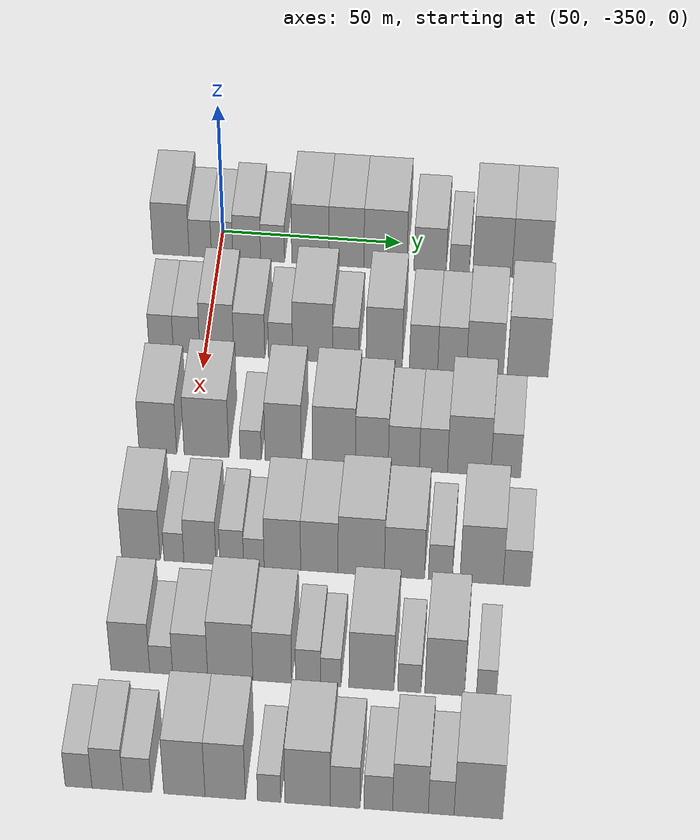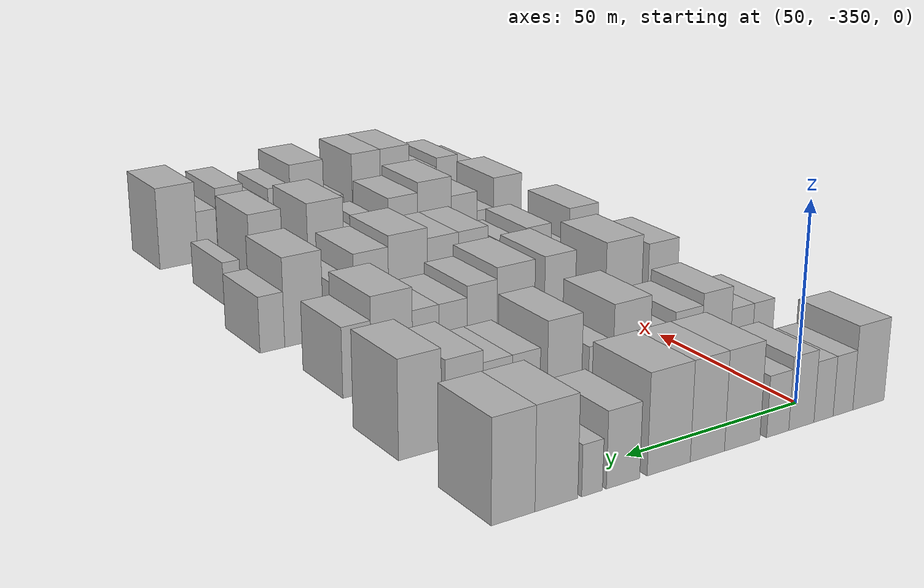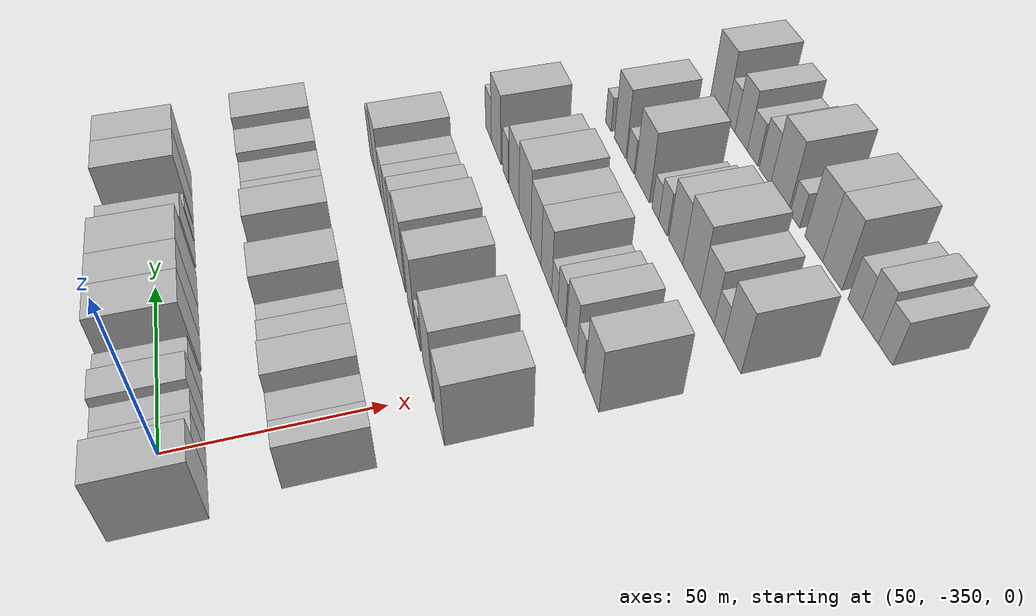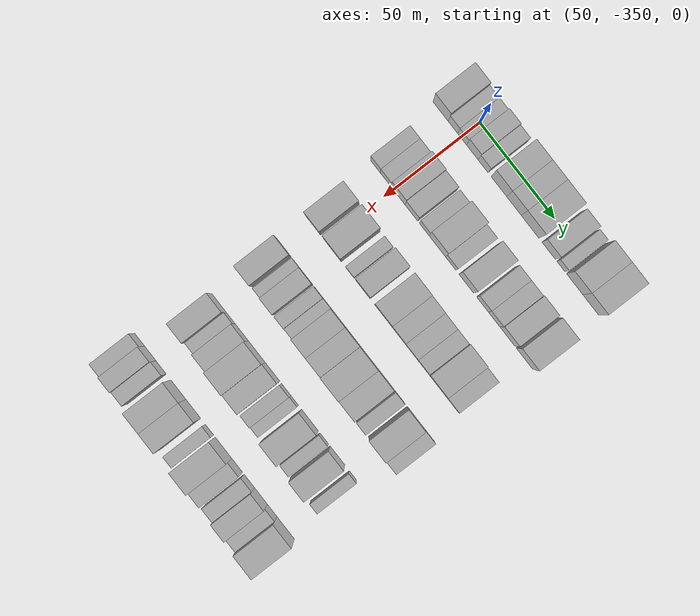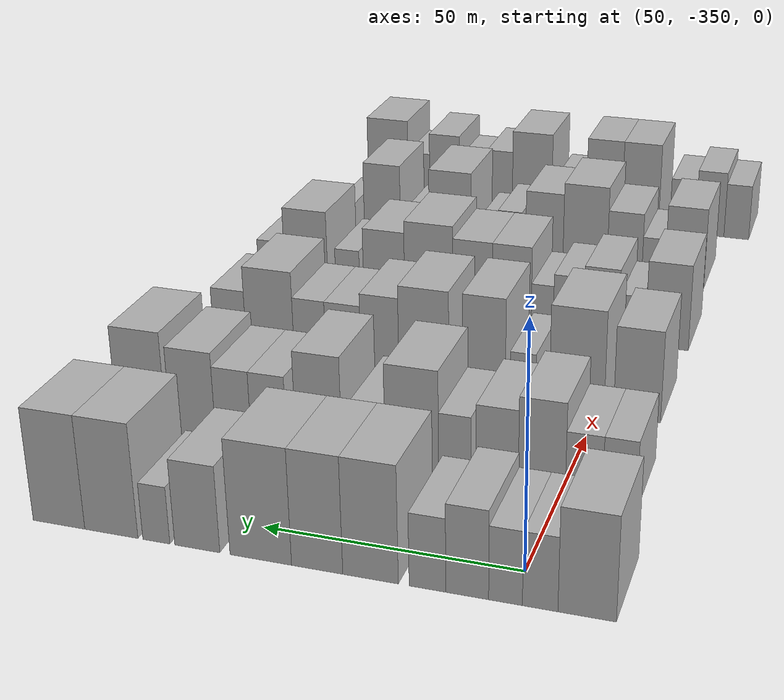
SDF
<sdf version="1.6">
 <world name="default">
  <model name="building_24">
   <static>1</static>
   <pose>50.0000 -363.4309 0 0.000000 0.000000 0.000000</pose>
   <link name="link">
    <pose>0 0 10.50 0 0 0</pose>
    <collision name="collision"><geometry><box><size>20.0000 10.1506 21.0000</size></box></geometry></collision>
    <visual name="visual">
     <cast_shadows>0</cast_shadows>
     <geometry><box><size>20.0000 10.1506 21.0000</size></box></geometry>
     <material>
      <script>
       <uri>model://HANNAS_wall/materials/scripts</uri>
       <uri>model://HANNAS_wall/materials/textures</uri>
       <name>vrc/HANNAS_wall</name>
      </script>
     </material>
    </visual>
   </link>
  </model>
  <model name="building_25">
   <static>1</static>
   <pose>50.0000 -355.2272 0 0.000000 0.000000 0.000000</pose>
   <link name="link">
    <pose>0 0 7.50 0 0 0</pose>
    <collision name="collision"><geometry><box><size>20.0000 6.2568 15.0000</size></box></geometry></collision>
    <visual name="visual">
     <cast_shadows>0</cast_shadows>
     <geometry><box><size>20.0000 6.2568 15.0000</size></box></geometry>
     <material>
      <script>
       <uri>model://HANNAS_wall/materials/scripts</uri>
       <uri>model://HANNAS_wall/materials/textures</uri>
       <name>vrc/HANNAS_wall</name>
      </script>
     </material>
    </visual>
   </link>
  </model>
  <model name="building_26">
   <static>1</static>
   <pose>50.0000 -349.0921 0 0.000000 0.000000 0.000000</pose>
   <link name="link">
    <pose>0 0 7.50 0 0 0</pose>
    <collision name="collision"><geometry><box><size>20.0000 6.0135 15.0000</size></box></geometry></collision>
    <visual name="visual">
     <cast_shadows>0</cast_shadows>
     <geometry><box><size>20.0000 6.0135 15.0000</size></box></geometry>
     <material>
      <script>
       <uri>model://HANNAS_wall/materials/scripts</uri>
       <uri>model://HANNAS_wall/materials/textures</uri>
       <name>vrc/HANNAS_wall</name>
      </script>
     </material>
    </visual>
   </link>
  </model>
  <model name="building_27">
   <static>1</static>
   <pose>50.0000 -342.2209 0 0.000000 0.000000 0.000000</pose>
   <link name="link">
    <pose>0 0 9.00 0 0 0</pose>
    <collision name="collision"><geometry><box><size>20.0000 7.7289 18.0000</size></box></geometry></collision>
    <visual name="visual">
     <cast_shadows>0</cast_shadows>
     <geometry><box><size>20.0000 7.7289 18.0000</size></box></geometry>
     <material>
      <script>
       <uri>model://HANNAS_wall/materials/scripts</uri>
       <uri>model://HANNAS_wall/materials/textures</uri>
       <name>vrc/HANNAS_wall</name>
      </script>
     </material>
    </visual>
   </link>
  </model>
  <model name="building_28">
   <static>1</static>
   <pose>50.0000 -335.0073 0 0.000000 0.000000 0.000000</pose>
   <link name="link">
    <pose>0 0 7.50 0 0 0</pose>
    <collision name="collision"><geometry><box><size>20.0000 6.6983 15.0000</size></box></geometry></collision>
    <visual name="visual">
     <cast_shadows>0</cast_shadows>
     <geometry><box><size>20.0000 6.6983 15.0000</size></box></geometry>
     <material>
      <script>
       <uri>model://HANNAS_wall/materials/scripts</uri>
       <uri>model://HANNAS_wall/materials/textures</uri>
       <name>vrc/HANNAS_wall</name>
      </script>
     </material>
    </visual>
   </link>
  </model>
  <model name="building_29">
   <static>1</static>
   <pose>50.0000 -324.4757 0 0.000000 0.000000 0.000000</pose>
   <link name="link">
    <pose>0 0 12.00 0 0 0</pose>
    <collision name="collision"><geometry><box><size>20.0000 10.3648 24.0000</size></box></geometry></collision>
    <visual name="visual">
     <cast_shadows>0</cast_shadows>
     <geometry><box><size>20.0000 10.3648 24.0000</size></box></geometry>
     <material>
      <script>
       <uri>model://HANNAS_wall/materials/scripts</uri>
       <uri>model://HANNAS_wall/materials/textures</uri>
       <name>vrc/HANNAS_wall</name>
      </script>
     </material>
    </visual>
   </link>
  </model>
  <model name="building_30">
   <static>1</static>
   <pose>50.0000 -314.4216 0 0.000000 0.000000 0.000000</pose>
   <link name="link">
    <pose>0 0 12.00 0 0 0</pose>
    <collision name="collision"><geometry><box><size>20.0000 9.7434 24.0000</size></box></geometry></collision>
    <visual name="visual">
     <cast_shadows>0</cast_shadows>
     <geometry><box><size>20.0000 9.7434 24.0000</size></box></geometry>
     <material>
      <script>
       <uri>model://HANNAS_wall/materials/scripts</uri>
       <uri>model://HANNAS_wall/materials/textures</uri>
       <name>vrc/HANNAS_wall</name>
      </script>
     </material>
    </visual>
   </link>
  </model>
  <model name="building_31">
   <static>1</static>
   <pose>50.0000 -303.5805 0 0.000000 0.000000 0.000000</pose>
   <link name="link">
    <pose>0 0 12.00 0 0 0</pose>
    <collision name="collision"><geometry><box><size>20.0000 11.9389 24.0000</size></box></geometry></collision>
    <visual name="visual">
     <cast_shadows>0</cast_shadows>
     <geometry><box><size>20.0000 11.9389 24.0000</size></box></geometry>
     <material>
      <script>
       <uri>model://HANNAS_wall/materials/scripts</uri>
       <uri>model://HANNAS_wall/materials/textures</uri>
       <name>vrc/HANNAS_wall</name>
      </script>
     </material>
    </visual>
   </link>
  </model>
  <model name="building_32">
   <static>1</static>
   <pose>50.0000 -291.1499 0 0.000000 0.000000 0.000000</pose>
   <link name="link">
    <pose>0 0 9.00 0 0 0</pose>
    <collision name="collision"><geometry><box><size>20.0000 8.9223 18.0000</size></box></geometry></collision>
    <visual name="visual">
     <cast_shadows>0</cast_shadows>
     <geometry><box><size>20.0000 8.9223 18.0000</size></box></geometry>
     <material>
      <script>
       <uri>model://HANNAS_wall/materials/scripts</uri>
       <uri>model://HANNAS_wall/materials/textures</uri>
       <name>vrc/HANNAS_wall</name>
      </script>
     </material>
    </visual>
   </link>
  </model>
  <model name="building_33">
   <static>1</static>
   <pose>50.0000 -282.9721 0 0.000000 0.000000 0.000000</pose>
   <link name="link">
    <pose>0 0 6.00 0 0 0</pose>
    <collision name="collision"><geometry><box><size>20.0000 5.4334 12.0000</size></box></geometry></collision>
    <visual name="visual">
     <cast_shadows>0</cast_shadows>
     <geometry><box><size>20.0000 5.4334 12.0000</size></box></geometry>
     <material>
      <script>
       <uri>model://HANNAS_wall/materials/scripts</uri>
       <uri>model://HANNAS_wall/materials/textures</uri>
       <name>vrc/HANNAS_wall</name>
      </script>
     </material>
    </visual>
   </link>
  </model>
  <model name="building_34">
   <static>1</static>
   <pose>50.0000 -273.8213 0 0.000000 0.000000 0.000000</pose>
   <link name="link">
    <pose>0 0 12.00 0 0 0</pose>
    <collision name="collision"><geometry><box><size>20.0000 10.8682 24.0000</size></box></geometry></collision>
    <visual name="visual">
     <cast_shadows>0</cast_shadows>
     <geometry><box><size>20.0000 10.8682 24.0000</size></box></geometry>
     <material>
      <script>
       <uri>model://HANNAS_wall/materials/scripts</uri>
       <uri>model://HANNAS_wall/materials/textures</uri>
       <name>vrc/HANNAS_wall</name>
      </script>
     </material>
    </visual>
   </link>
  </model>
  <model name="building_35">
   <static>1</static>
   <pose>50.0000 -263.0120 0 0.000000 0.000000 0.000000</pose>
   <link name="link">
    <pose>0 0 12.00 0 0 0</pose>
    <collision name="collision"><geometry><box><size>20.0000 10.7503 24.0000</size></box></geometry></collision>
    <visual name="visual">
     <cast_shadows>0</cast_shadows>
     <geometry><box><size>20.0000 10.7503 24.0000</size></box></geometry>
     <material>
      <script>
       <uri>model://HANNAS_wall/materials/scripts</uri>
       <uri>model://HANNAS_wall/materials/textures</uri>
       <name>vrc/HANNAS_wall</name>
      </script>
     </material>
    </visual>
   </link>
  </model>
  <model name="building_153">
   <static>1</static>
   <pose>85.0000 -361.9511 0 0.000000 0.000000 0.000000</pose>
   <link name="link">
    <pose>0 0 7.50 0 0 0</pose>
    <collision name="collision"><geometry><box><size>20.0000 6.6317 15.0000</size></box></geometry></collision>
    <visual name="visual">
     <cast_shadows>0</cast_shadows>
     <geometry><box><size>20.0000 6.6317 15.0000</size></box></geometry>
     <material>
      <script>
       <uri>model://HANNAS_wall/materials/scripts</uri>
       <uri>model://HANNAS_wall/materials/textures</uri>
       <name>vrc/HANNAS_wall</name>
      </script>
     </material>
    </visual>
   </link>
  </model>
  <model name="building_154">
   <static>1</static>
   <pose>85.0000 -355.0183 0 0.000000 0.000000 0.000000</pose>
   <link name="link">
    <pose>0 0 7.50 0 0 0</pose>
    <collision name="collision"><geometry><box><size>20.0000 7.2338 15.0000</size></box></geometry></collision>
    <visual name="visual">
     <cast_shadows>0</cast_shadows>
     <geometry><box><size>20.0000 7.2338 15.0000</size></box></geometry>
     <material>
      <script>
       <uri>model://HANNAS_wall/materials/scripts</uri>
       <uri>model://HANNAS_wall/materials/textures</uri>
       <name>vrc/HANNAS_wall</name>
      </script>
     </material>
    </visual>
   </link>
  </model>
  <model name="building_155">
   <static>1</static>
   <pose>85.0000 -346.7651 0 0.000000 0.000000 0.000000</pose>
   <link name="link">
    <pose>0 0 10.50 0 0 0</pose>
    <collision name="collision"><geometry><box><size>20.0000 9.2728 21.0000</size></box></geometry></collision>
    <visual name="visual">
     <cast_shadows>0</cast_shadows>
     <geometry><box><size>20.0000 9.2728 21.0000</size></box></geometry>
     <material>
      <script>
       <uri>model://HANNAS_wall/materials/scripts</uri>
       <uri>model://HANNAS_wall/materials/textures</uri>
       <name>vrc/HANNAS_wall</name>
      </script>
     </material>
    </visual>
   </link>
  </model>
  <model name="building_156">
   <static>1</static>
   <pose>85.0000 -337.8982 0 0.000000 0.000000 0.000000</pose>
   <link name="link">
    <pose>0 0 9.00 0 0 0</pose>
    <collision name="collision"><geometry><box><size>20.0000 8.4610 18.0000</size></box></geometry></collision>
    <visual name="visual">
     <cast_shadows>0</cast_shadows>
     <geometry><box><size>20.0000 8.4610 18.0000</size></box></geometry>
     <material>
      <script>
       <uri>model://HANNAS_wall/materials/scripts</uri>
       <uri>model://HANNAS_wall/materials/textures</uri>
       <name>vrc/HANNAS_wall</name>
      </script>
     </material>
    </visual>
   </link>
  </model>
  <model name="building_157">
   <static>1</static>
   <pose>85.0000 -329.3934 0 0.000000 0.000000 0.000000</pose>
   <link name="link">
    <pose>0 0 7.50 0 0 0</pose>
    <collision name="collision"><geometry><box><size>20.0000 6.5484 15.0000</size></box></geometry></collision>
    <visual name="visual">
     <cast_shadows>0</cast_shadows>
     <geometry><box><size>20.0000 6.5484 15.0000</size></box></geometry>
     <material>
      <script>
       <uri>model://HANNAS_wall/materials/scripts</uri>
       <uri>model://HANNAS_wall/materials/textures</uri>
       <name>vrc/HANNAS_wall</name>
      </script>
     </material>
    </visual>
   </link>
  </model>
  <model name="building_158">
   <static>1</static>
   <pose>85.0000 -320.6486 0 0.000000 0.000000 0.000000</pose>
   <link name="link">
    <pose>0 0 12.00 0 0 0</pose>
    <collision name="collision"><geometry><box><size>20.0000 10.9413 24.0000</size></box></geometry></collision>
    <visual name="visual">
     <cast_shadows>0</cast_shadows>
     <geometry><box><size>20.0000 10.9413 24.0000</size></box></geometry>
     <material>
      <script>
       <uri>model://HANNAS_wall/materials/scripts</uri>
       <uri>model://HANNAS_wall/materials/textures</uri>
       <name>vrc/HANNAS_wall</name>
      </script>
     </material>
    </visual>
   </link>
  </model>
  <model name="building_159">
   <static>1</static>
   <pose>85.0000 -311.6511 0 0.000000 0.000000 0.000000</pose>
   <link name="link">
    <pose>0 0 7.50 0 0 0</pose>
    <collision name="collision"><geometry><box><size>20.0000 7.0537 15.0000</size></box></geometry></collision>
    <visual name="visual">
     <cast_shadows>0</cast_shadows>
     <geometry><box><size>20.0000 7.0537 15.0000</size></box></geometry>
     <material>
      <script>
       <uri>model://HANNAS_wall/materials/scripts</uri>
       <uri>model://HANNAS_wall/materials/textures</uri>
       <name>vrc/HANNAS_wall</name>
      </script>
     </material>
    </visual>
   </link>
  </model>
  <model name="building_160">
   <static>1</static>
   <pose>85.0000 -301.2420 0 0.000000 0.000000 0.000000</pose>
   <link name="link">
    <pose>0 0 12.00 0 0 0</pose>
    <collision name="collision"><geometry><box><size>20.0000 9.7644 24.0000</size></box></geometry></collision>
    <visual name="visual">
     <cast_shadows>0</cast_shadows>
     <geometry><box><size>20.0000 9.7644 24.0000</size></box></geometry>
     <material>
      <script>
       <uri>model://HANNAS_wall/materials/scripts</uri>
       <uri>model://HANNAS_wall/materials/textures</uri>
       <name>vrc/HANNAS_wall</name>
      </script>
     </material>
    </visual>
   </link>
  </model>
  <model name="building_161">
   <static>1</static>
   <pose>85.0000 -290.5201 0 0.000000 0.000000 0.000000</pose>
   <link name="link">
    <pose>0 0 9.00 0 0 0</pose>
    <collision name="collision"><geometry><box><size>20.0000 7.6795 18.0000</size></box></geometry></collision>
    <visual name="visual">
     <cast_shadows>0</cast_shadows>
     <geometry><box><size>20.0000 7.6795 18.0000</size></box></geometry>
     <material>
      <script>
       <uri>model://HANNAS_wall/materials/scripts</uri>
       <uri>model://HANNAS_wall/materials/textures</uri>
       <name>vrc/HANNAS_wall</name>
      </script>
     </material>
    </visual>
   </link>
  </model>
  <model name="building_162">
   <static>1</static>
   <pose>85.0000 -282.7729 0 0.000000 0.000000 0.000000</pose>
   <link name="link">
    <pose>0 0 9.00 0 0 0</pose>
    <collision name="collision"><geometry><box><size>20.0000 7.8149 18.0000</size></box></geometry></collision>
    <visual name="visual">
     <cast_shadows>0</cast_shadows>
     <geometry><box><size>20.0000 7.8149 18.0000</size></box></geometry>
     <material>
      <script>
       <uri>model://HANNAS_wall/materials/scripts</uri>
       <uri>model://HANNAS_wall/materials/textures</uri>
       <name>vrc/HANNAS_wall</name>
      </script>
     </material>
    </visual>
   </link>
  </model>
  <model name="building_163">
   <static>1</static>
   <pose>85.0000 -273.8804 0 0.000000 0.000000 0.000000</pose>
   <link name="link">
    <pose>0 0 10.50 0 0 0</pose>
    <collision name="collision"><geometry><box><size>20.0000 9.9701 21.0000</size></box></geometry></collision>
    <visual name="visual">
     <cast_shadows>0</cast_shadows>
     <geometry><box><size>20.0000 9.9701 21.0000</size></box></geometry>
     <material>
      <script>
       <uri>model://HANNAS_wall/materials/scripts</uri>
       <uri>model://HANNAS_wall/materials/textures</uri>
       <name>vrc/HANNAS_wall</name>
      </script>
     </material>
    </visual>
   </link>
  </model>
  <model name="building_164">
   <static>1</static>
   <pose>85.0000 -262.3771 0 0.000000 0.000000 0.000000</pose>
   <link name="link">
    <pose>0 0 12.00 0 0 0</pose>
    <collision name="collision"><geometry><box><size>20.0000 11.0364 24.0000</size></box></geometry></collision>
    <visual name="visual">
     <cast_shadows>0</cast_shadows>
     <geometry><box><size>20.0000 11.0364 24.0000</size></box></geometry>
     <material>
      <script>
       <uri>model://HANNAS_wall/materials/scripts</uri>
       <uri>model://HANNAS_wall/materials/textures</uri>
       <name>vrc/HANNAS_wall</name>
      </script>
     </material>
    </visual>
   </link>
  </model>
  <model name="building_281">
   <static>1</static>
   <pose>120.0000 -358.6062 0 0.000000 0.000000 0.000000</pose>
   <link name="link">
    <pose>0 0 10.50 0 0 0</pose>
    <collision name="collision"><geometry><box><size>20.0000 9.9936 21.0000</size></box></geometry></collision>
    <visual name="visual">
     <cast_shadows>0</cast_shadows>
     <geometry><box><size>20.0000 9.9936 21.0000</size></box></geometry>
     <material>
      <script>
       <uri>model://HANNAS_wall/materials/scripts</uri>
       <uri>model://HANNAS_wall/materials/textures</uri>
       <name>vrc/HANNAS_wall</name>
      </script>
     </material>
    </visual>
   </link>
  </model>
  <model name="building_282">
   <static>1</static>
   <pose>120.0000 -345.6694 0 0.000000 0.000000 0.000000</pose>
   <link name="link">
    <pose>0 0 12.00 0 0 0</pose>
    <collision name="collision"><geometry><box><size>20.0000 11.8802 24.0000</size></box></geometry></collision>
    <visual name="visual">
     <cast_shadows>0</cast_shadows>
     <geometry><box><size>20.0000 11.8802 24.0000</size></box></geometry>
     <material>
      <script>
       <uri>model://HANNAS_wall/materials/scripts</uri>
       <uri>model://HANNAS_wall/materials/textures</uri>
       <name>vrc/HANNAS_wall</name>
      </script>
     </material>
    </visual>
   </link>
  </model>
  <model name="building_283">
   <static>1</static>
   <pose>120.0000 -333.9067 0 0.000000 0.000000 0.000000</pose>
   <link name="link">
    <pose>0 0 6.00 0 0 0</pose>
    <collision name="collision"><geometry><box><size>20.0000 5.6452 12.0000</size></box></geometry></collision>
    <visual name="visual">
     <cast_shadows>0</cast_shadows>
     <geometry><box><size>20.0000 5.6452 12.0000</size></box></geometry>
     <material>
      <script>
       <uri>model://HANNAS_wall/materials/scripts</uri>
       <uri>model://HANNAS_wall/materials/textures</uri>
       <name>vrc/HANNAS_wall</name>
      </script>
     </material>
    </visual>
   </link>
  </model>
  <model name="building_284">
   <static>1</static>
   <pose>120.0000 -325.2833 0 0.000000 0.000000 0.000000</pose>
   <link name="link">
    <pose>0 0 12.00 0 0 0</pose>
    <collision name="collision"><geometry><box><size>20.0000 9.6015 24.0000</size></box></geometry></collision>
    <visual name="visual">
     <cast_shadows>0</cast_shadows>
     <geometry><box><size>20.0000 9.6015 24.0000</size></box></geometry>
     <material>
      <script>
       <uri>model://HANNAS_wall/materials/scripts</uri>
       <uri>model://HANNAS_wall/materials/textures</uri>
       <name>vrc/HANNAS_wall</name>
      </script>
     </material>
    </visual>
   </link>
  </model>
  <model name="building_285">
   <static>1</static>
   <pose>120.0000 -311.8254 0 0.000000 0.000000 0.000000</pose>
   <link name="link">
    <pose>0 0 12.00 0 0 0</pose>
    <collision name="collision"><geometry><box><size>20.0000 11.3143 24.0000</size></box></geometry></collision>
    <visual name="visual">
     <cast_shadows>0</cast_shadows>
     <geometry><box><size>20.0000 11.3143 24.0000</size></box></geometry>
     <material>
      <script>
       <uri>model://HANNAS_wall/materials/scripts</uri>
       <uri>model://HANNAS_wall/materials/textures</uri>
       <name>vrc/HANNAS_wall</name>
      </script>
     </material>
    </visual>
   </link>
  </model>
  <model name="building_286">
   <static>1</static>
   <pose>120.0000 -301.8085 0 0.000000 0.000000 0.000000</pose>
   <link name="link">
    <pose>0 0 10.50 0 0 0</pose>
    <collision name="collision"><geometry><box><size>20.0000 8.7195 21.0000</size></box></geometry></collision>
    <visual name="visual">
     <cast_shadows>0</cast_shadows>
     <geometry><box><size>20.0000 8.7195 21.0000</size></box></geometry>
     <material>
      <script>
       <uri>model://HANNAS_wall/materials/scripts</uri>
       <uri>model://HANNAS_wall/materials/textures</uri>
       <name>vrc/HANNAS_wall</name>
      </script>
     </material>
    </visual>
   </link>
  </model>
  <model name="building_287">
   <static>1</static>
   <pose>120.0000 -293.3529 0 0.000000 0.000000 0.000000</pose>
   <link name="link">
    <pose>0 0 9.00 0 0 0</pose>
    <collision name="collision"><geometry><box><size>20.0000 8.1916 18.0000</size></box></geometry></collision>
    <visual name="visual">
     <cast_shadows>0</cast_shadows>
     <geometry><box><size>20.0000 8.1916 18.0000</size></box></geometry>
     <material>
      <script>
       <uri>model://HANNAS_wall/materials/scripts</uri>
       <uri>model://HANNAS_wall/materials/textures</uri>
       <name>vrc/HANNAS_wall</name>
      </script>
     </material>
    </visual>
   </link>
  </model>
  <model name="building_288">
   <static>1</static>
   <pose>120.0000 -285.5261 0 0.000000 0.000000 0.000000</pose>
   <link name="link">
    <pose>0 0 9.00 0 0 0</pose>
    <collision name="collision"><geometry><box><size>20.0000 7.4621 18.0000</size></box></geometry></collision>
    <visual name="visual">
     <cast_shadows>0</cast_shadows>
     <geometry><box><size>20.0000 7.4621 18.0000</size></box></geometry>
     <material>
      <script>
       <uri>model://HANNAS_wall/materials/scripts</uri>
       <uri>model://HANNAS_wall/materials/textures</uri>
       <name>vrc/HANNAS_wall</name>
      </script>
     </material>
    </visual>
   </link>
  </model>
  <model name="building_289">
   <static>1</static>
   <pose>120.0000 -276.0928 0 0.000000 0.000000 0.000000</pose>
   <link name="link">
    <pose>0 0 12.00 0 0 0</pose>
    <collision name="collision"><geometry><box><size>20.0000 11.4045 24.0000</size></box></geometry></collision>
    <visual name="visual">
     <cast_shadows>0</cast_shadows>
     <geometry><box><size>20.0000 11.4045 24.0000</size></box></geometry>
     <material>
      <script>
       <uri>model://HANNAS_wall/materials/scripts</uri>
       <uri>model://HANNAS_wall/materials/textures</uri>
       <name>vrc/HANNAS_wall</name>
      </script>
     </material>
    </visual>
   </link>
  </model>
  <model name="building_290">
   <static>1</static>
   <pose>120.0000 -266.4573 0 0.000000 0.000000 0.000000</pose>
   <link name="link">
    <pose>0 0 9.00 0 0 0</pose>
    <collision name="collision"><geometry><box><size>20.0000 7.8664 18.0000</size></box></geometry></collision>
    <visual name="visual">
     <cast_shadows>0</cast_shadows>
     <geometry><box><size>20.0000 7.8664 18.0000</size></box></geometry>
     <material>
      <script>
       <uri>model://HANNAS_wall/materials/scripts</uri>
       <uri>model://HANNAS_wall/materials/textures</uri>
       <name>vrc/HANNAS_wall</name>
      </script>
     </material>
    </visual>
   </link>
  </model>
  <model name="building_405">
   <static>1</static>
   <pose>155.0000 -358.7705 0 0.000000 0.000000 0.000000</pose>
   <link name="link">
    <pose>0 0 10.50 0 0 0</pose>
    <collision name="collision"><geometry><box><size>20.0000 9.9899 21.0000</size></box></geometry></collision>
    <visual name="visual">
     <cast_shadows>0</cast_shadows>
     <geometry><box><size>20.0000 9.9899 21.0000</size></box></geometry>
     <material>
      <script>
       <uri>model://HANNAS_wall/materials/scripts</uri>
       <uri>model://HANNAS_wall/materials/textures</uri>
       <name>vrc/HANNAS_wall</name>
      </script>
     </material>
    </visual>
   </link>
  </model>
  <model name="building_406">
   <static>1</static>
   <pose>155.0000 -350.1902 0 0.000000 0.000000 0.000000</pose>
   <link name="link">
    <pose>0 0 6.00 0 0 0</pose>
    <collision name="collision"><geometry><box><size>20.0000 5.1708 12.0000</size></box></geometry></collision>
    <visual name="visual">
     <cast_shadows>0</cast_shadows>
     <geometry><box><size>20.0000 5.1708 12.0000</size></box></geometry>
     <material>
      <script>
       <uri>model://HANNAS_wall/materials/scripts</uri>
       <uri>model://HANNAS_wall/materials/textures</uri>
       <name>vrc/HANNAS_wall</name>
      </script>
     </material>
    </visual>
   </link>
  </model>
  <model name="building_407">
   <static>1</static>
   <pose>155.0000 -343.4422 0 0.000000 0.000000 0.000000</pose>
   <link name="link">
    <pose>0 0 9.00 0 0 0</pose>
    <collision name="collision"><geometry><box><size>20.0000 8.3251 18.0000</size></box></geometry></collision>
    <visual name="visual">
     <cast_shadows>0</cast_shadows>
     <geometry><box><size>20.0000 8.3251 18.0000</size></box></geometry>
     <material>
      <script>
       <uri>model://HANNAS_wall/materials/scripts</uri>
       <uri>model://HANNAS_wall/materials/textures</uri>
       <name>vrc/HANNAS_wall</name>
      </script>
     </material>
    </visual>
   </link>
  </model>
  <model name="building_408">
   <static>1</static>
   <pose>155.0000 -335.2054 0 0.000000 0.000000 0.000000</pose>
   <link name="link">
    <pose>0 0 7.50 0 0 0</pose>
    <collision name="collision"><geometry><box><size>20.0000 6.1485 15.0000</size></box></geometry></collision>
    <visual name="visual">
     <cast_shadows>0</cast_shadows>
     <geometry><box><size>20.0000 6.1485 15.0000</size></box></geometry>
     <material>
      <script>
       <uri>model://HANNAS_wall/materials/scripts</uri>
       <uri>model://HANNAS_wall/materials/textures</uri>
       <name>vrc/HANNAS_wall</name>
      </script>
     </material>
    </visual>
   </link>
  </model>
  <model name="building_409">
   <static>1</static>
   <pose>155.0000 -329.4808 0 0.000000 0.000000 0.000000</pose>
   <link name="link">
    <pose>0 0 6.00 0 0 0</pose>
    <collision name="collision"><geometry><box><size>20.0000 5.3008 12.0000</size></box></geometry></collision>
    <visual name="visual">
     <cast_shadows>0</cast_shadows>
     <geometry><box><size>20.0000 5.3008 12.0000</size></box></geometry>
     <material>
      <script>
       <uri>model://HANNAS_wall/materials/scripts</uri>
       <uri>model://HANNAS_wall/materials/textures</uri>
       <name>vrc/HANNAS_wall</name>
      </script>
     </material>
    </visual>
   </link>
  </model>
  <model name="building_410">
   <static>1</static>
   <pose>155.0000 -322.1096 0 0.000000 0.000000 0.000000</pose>
   <link name="link">
    <pose>0 0 10.50 0 0 0</pose>
    <collision name="collision"><geometry><box><size>20.0000 9.4415 21.0000</size></box></geometry></collision>
    <visual name="visual">
     <cast_shadows>0</cast_shadows>
     <geometry><box><size>20.0000 9.4415 21.0000</size></box></geometry>
     <material>
      <script>
       <uri>model://HANNAS_wall/materials/scripts</uri>
       <uri>model://HANNAS_wall/materials/textures</uri>
       <name>vrc/HANNAS_wall</name>
      </script>
     </material>
    </visual>
   </link>
  </model>
  <model name="building_411">
   <static>1</static>
   <pose>155.0000 -312.5730 0 0.000000 0.000000 0.000000</pose>
   <link name="link">
    <pose>0 0 10.50 0 0 0</pose>
    <collision name="collision"><geometry><box><size>20.0000 9.6317 21.0000</size></box></geometry></collision>
    <visual name="visual">
     <cast_shadows>0</cast_shadows>
     <geometry><box><size>20.0000 9.6317 21.0000</size></box></geometry>
     <material>
      <script>
       <uri>model://HANNAS_wall/materials/scripts</uri>
       <uri>model://HANNAS_wall/materials/textures</uri>
       <name>vrc/HANNAS_wall</name>
      </script>
     </material>
    </visual>
   </link>
  </model>
  <model name="building_412">
   <static>1</static>
   <pose>155.0000 -301.7842 0 0.000000 0.000000 0.000000</pose>
   <link name="link">
    <pose>0 0 12.00 0 0 0</pose>
    <collision name="collision"><geometry><box><size>20.0000 11.9459 24.0000</size></box></geometry></collision>
    <visual name="visual">
     <cast_shadows>0</cast_shadows>
     <geometry><box><size>20.0000 11.9459 24.0000</size></box></geometry>
     <material>
      <script>
       <uri>model://HANNAS_wall/materials/scripts</uri>
       <uri>model://HANNAS_wall/materials/textures</uri>
       <name>vrc/HANNAS_wall</name>
      </script>
     </material>
    </visual>
   </link>
  </model>
  <model name="building_413">
   <static>1</static>
   <pose>155.0000 -290.6446 0 0.000000 0.000000 0.000000</pose>
   <link name="link">
    <pose>0 0 10.50 0 0 0</pose>
    <collision name="collision"><geometry><box><size>20.0000 10.3333 21.0000</size></box></geometry></collision>
    <visual name="visual">
     <cast_shadows>0</cast_shadows>
     <geometry><box><size>20.0000 10.3333 21.0000</size></box></geometry>
     <material>
      <script>
       <uri>model://HANNAS_wall/materials/scripts</uri>
       <uri>model://HANNAS_wall/materials/textures</uri>
       <name>vrc/HANNAS_wall</name>
      </script>
     </material>
    </visual>
   </link>
  </model>
  <model name="building_414">
   <static>1</static>
   <pose>155.0000 -281.4172 0 0.000000 0.000000 0.000000</pose>
   <link name="link">
    <pose>0 0 7.50 0 0 0</pose>
    <collision name="collision"><geometry><box><size>20.0000 6.1214 15.0000</size></box></geometry></collision>
    <visual name="visual">
     <cast_shadows>0</cast_shadows>
     <geometry><box><size>20.0000 6.1214 15.0000</size></box></geometry>
     <material>
      <script>
       <uri>model://HANNAS_wall/materials/scripts</uri>
       <uri>model://HANNAS_wall/materials/textures</uri>
       <name>vrc/HANNAS_wall</name>
      </script>
     </material>
    </visual>
   </link>
  </model>
  <model name="building_415">
   <static>1</static>
   <pose>155.0000 -270.8147 0 0.000000 0.000000 0.000000</pose>
   <link name="link">
    <pose>0 0 12.00 0 0 0</pose>
    <collision name="collision"><geometry><box><size>20.0000 11.0836 24.0000</size></box></geometry></collision>
    <visual name="visual">
     <cast_shadows>0</cast_shadows>
     <geometry><box><size>20.0000 11.0836 24.0000</size></box></geometry>
     <material>
      <script>
       <uri>model://HANNAS_wall/materials/scripts</uri>
       <uri>model://HANNAS_wall/materials/textures</uri>
       <name>vrc/HANNAS_wall</name>
      </script>
     </material>
    </visual>
   </link>
  </model>
  <model name="building_416">
   <static>1</static>
   <pose>155.0000 -261.8004 0 0.000000 0.000000 0.000000</pose>
   <link name="link">
    <pose>0 0 7.50 0 0 0</pose>
    <collision name="collision"><geometry><box><size>20.0000 6.9449 15.0000</size></box></geometry></collision>
    <visual name="visual">
     <cast_shadows>0</cast_shadows>
     <geometry><box><size>20.0000 6.9449 15.0000</size></box></geometry>
     <material>
      <script>
       <uri>model://HANNAS_wall/materials/scripts</uri>
       <uri>model://HANNAS_wall/materials/textures</uri>
       <name>vrc/HANNAS_wall</name>
      </script>
     </material>
    </visual>
   </link>
  </model>
  <model name="building_534">
   <static>1</static>
   <pose>190.0000 -357.0696 0 0.000000 0.000000 0.000000</pose>
   <link name="link">
    <pose>0 0 10.50 0 0 0</pose>
    <collision name="collision"><geometry><box><size>20.0000 9.8251 21.0000</size></box></geometry></collision>
    <visual name="visual">
     <cast_shadows>0</cast_shadows>
     <geometry><box><size>20.0000 9.8251 21.0000</size></box></geometry>
     <material>
      <script>
       <uri>model://HANNAS_wall/materials/scripts</uri>
       <uri>model://HANNAS_wall/materials/textures</uri>
       <name>vrc/HANNAS_wall</name>
      </script>
     </material>
    </visual>
   </link>
  </model>
  <model name="building_535">
   <static>1</static>
   <pose>190.0000 -349.2729 0 0.000000 0.000000 0.000000</pose>
   <link name="link">
    <pose>0 0 6.00 0 0 0</pose>
    <collision name="collision"><geometry><box><size>20.0000 5.7681 12.0000</size></box></geometry></collision>
    <visual name="visual">
     <cast_shadows>0</cast_shadows>
     <geometry><box><size>20.0000 5.7681 12.0000</size></box></geometry>
     <material>
      <script>
       <uri>model://HANNAS_wall/materials/scripts</uri>
       <uri>model://HANNAS_wall/materials/textures</uri>
       <name>vrc/HANNAS_wall</name>
      </script>
     </material>
    </visual>
   </link>
  </model>
  <model name="building_536">
   <static>1</static>
   <pose>190.0000 -341.9556 0 0.000000 0.000000 0.000000</pose>
   <link name="link">
    <pose>0 0 9.00 0 0 0</pose>
    <collision name="collision"><geometry><box><size>20.0000 8.8666 18.0000</size></box></geometry></collision>
    <visual name="visual">
     <cast_shadows>0</cast_shadows>
     <geometry><box><size>20.0000 8.8666 18.0000</size></box></geometry>
     <material>
      <script>
       <uri>model://HANNAS_wall/materials/scripts</uri>
       <uri>model://HANNAS_wall/materials/textures</uri>
       <name>vrc/HANNAS_wall</name>
      </script>
     </material>
    </visual>
   </link>
  </model>
  <model name="building_537">
   <static>1</static>
   <pose>190.0000 -331.8355 0 0.000000 0.000000 0.000000</pose>
   <link name="link">
    <pose>0 0 12.00 0 0 0</pose>
    <collision name="collision"><geometry><box><size>20.0000 11.3735 24.0000</size></box></geometry></collision>
    <visual name="visual">
     <cast_shadows>0</cast_shadows>
     <geometry><box><size>20.0000 11.3735 24.0000</size></box></geometry>
     <material>
      <script>
       <uri>model://HANNAS_wall/materials/scripts</uri>
       <uri>model://HANNAS_wall/materials/textures</uri>
       <name>vrc/HANNAS_wall</name>
      </script>
     </material>
    </visual>
   </link>
  </model>
  <model name="building_538">
   <static>1</static>
   <pose>190.0000 -321.2814 0 0.000000 0.000000 0.000000</pose>
   <link name="link">
    <pose>0 0 10.50 0 0 0</pose>
    <collision name="collision"><geometry><box><size>20.0000 9.7347 21.0000</size></box></geometry></collision>
    <visual name="visual">
     <cast_shadows>0</cast_shadows>
     <geometry><box><size>20.0000 9.7347 21.0000</size></box></geometry>
     <material>
      <script>
       <uri>model://HANNAS_wall/materials/scripts</uri>
       <uri>model://HANNAS_wall/materials/textures</uri>
       <name>vrc/HANNAS_wall</name>
      </script>
     </material>
    </visual>
   </link>
  </model>
  <model name="building_539">
   <static>1</static>
   <pose>190.0000 -312.2719 0 0.000000 0.000000 0.000000</pose>
   <link name="link">
    <pose>0 0 7.50 0 0 0</pose>
    <collision name="collision"><geometry><box><size>20.0000 6.2843 15.0000</size></box></geometry></collision>
    <visual name="visual">
     <cast_shadows>0</cast_shadows>
     <geometry><box><size>20.0000 6.2843 15.0000</size></box></geometry>
     <material>
      <script>
       <uri>model://HANNAS_wall/materials/scripts</uri>
       <uri>model://HANNAS_wall/materials/textures</uri>
       <name>vrc/HANNAS_wall</name>
      </script>
     </material>
    </visual>
   </link>
  </model>
  <model name="building_540">
   <static>1</static>
   <pose>190.0000 -306.5652 0 0.000000 0.000000 0.000000</pose>
   <link name="link">
    <pose>0 0 6.00 0 0 0</pose>
    <collision name="collision"><geometry><box><size>20.0000 5.1291 12.0000</size></box></geometry></collision>
    <visual name="visual">
     <cast_shadows>0</cast_shadows>
     <geometry><box><size>20.0000 5.1291 12.0000</size></box></geometry>
     <material>
      <script>
       <uri>model://HANNAS_wall/materials/scripts</uri>
       <uri>model://HANNAS_wall/materials/textures</uri>
       <name>vrc/HANNAS_wall</name>
      </script>
     </material>
    </visual>
   </link>
  </model>
  <model name="building_541">
   <static>1</static>
   <pose>190.0000 -296.3800 0 0.000000 0.000000 0.000000</pose>
   <link name="link">
    <pose>0 0 12.00 0 0 0</pose>
    <collision name="collision"><geometry><box><size>20.0000 11.2413 24.0000</size></box></geometry></collision>
    <visual name="visual">
     <cast_shadows>0</cast_shadows>
     <geometry><box><size>20.0000 11.2413 24.0000</size></box></geometry>
     <material>
      <script>
       <uri>model://HANNAS_wall/materials/scripts</uri>
       <uri>model://HANNAS_wall/materials/textures</uri>
       <name>vrc/HANNAS_wall</name>
      </script>
     </material>
    </visual>
   </link>
  </model>
  <model name="building_542">
   <static>1</static>
   <pose>190.0000 -286.8655 0 0.000000 0.000000 0.000000</pose>
   <link name="link">
    <pose>0 0 6.00 0 0 0</pose>
    <collision name="collision"><geometry><box><size>20.0000 5.7877 12.0000</size></box></geometry></collision>
    <visual name="visual">
     <cast_shadows>0</cast_shadows>
     <geometry><box><size>20.0000 5.7877 12.0000</size></box></geometry>
     <material>
      <script>
       <uri>model://HANNAS_wall/materials/scripts</uri>
       <uri>model://HANNAS_wall/materials/textures</uri>
       <name>vrc/HANNAS_wall</name>
      </script>
     </material>
    </visual>
   </link>
  </model>
  <model name="building_543">
   <static>1</static>
   <pose>190.0000 -278.0320 0 0.000000 0.000000 0.000000</pose>
   <link name="link">
    <pose>0 0 12.00 0 0 0</pose>
    <collision name="collision"><geometry><box><size>20.0000 9.8794 24.0000</size></box></geometry></collision>
    <visual name="visual">
     <cast_shadows>0</cast_shadows>
     <geometry><box><size>20.0000 9.8794 24.0000</size></box></geometry>
     <material>
      <script>
       <uri>model://HANNAS_wall/materials/scripts</uri>
       <uri>model://HANNAS_wall/materials/textures</uri>
       <name>vrc/HANNAS_wall</name>
      </script>
     </material>
    </visual>
   </link>
  </model>
  <model name="building_544">
   <static>1</static>
   <pose>190.0000 -267.5906 0 0.000000 0.000000 0.000000</pose>
   <link name="link">
    <pose>0 0 6.00 0 0 0</pose>
    <collision name="collision"><geometry><box><size>20.0000 5.0034 12.0000</size></box></geometry></collision>
    <visual name="visual">
     <cast_shadows>0</cast_shadows>
     <geometry><box><size>20.0000 5.0034 12.0000</size></box></geometry>
     <material>
      <script>
       <uri>model://HANNAS_wall/materials/scripts</uri>
       <uri>model://HANNAS_wall/materials/textures</uri>
       <name>vrc/HANNAS_wall</name>
      </script>
     </material>
    </visual>
   </link>
  </model>
  <model name="building_656">
   <static>1</static>
   <pose>225.0000 -365.3580 0 0.000000 0.000000 0.000000</pose>
   <link name="link">
    <pose>0 0 7.50 0 0 0</pose>
    <collision name="collision"><geometry><box><size>20.0000 6.5782 15.0000</size></box></geometry></collision>
    <visual name="visual">
     <cast_shadows>0</cast_shadows>
     <geometry><box><size>20.0000 6.5782 15.0000</size></box></geometry>
     <material>
      <script>
       <uri>model://HANNAS_wall/materials/scripts</uri>
       <uri>model://HANNAS_wall/materials/textures</uri>
       <name>vrc/HANNAS_wall</name>
      </script>
     </material>
    </visual>
   </link>
  </model>
  <model name="building_657">
   <static>1</static>
   <pose>225.0000 -358.2292 0 0.000000 0.000000 0.000000</pose>
   <link name="link">
    <pose>0 0 9.00 0 0 0</pose>
    <collision name="collision"><geometry><box><size>20.0000 7.6794 18.0000</size></box></geometry></collision>
    <visual name="visual">
     <cast_shadows>0</cast_shadows>
     <geometry><box><size>20.0000 7.6794 18.0000</size></box></geometry>
     <material>
      <script>
       <uri>model://HANNAS_wall/materials/scripts</uri>
       <uri>model://HANNAS_wall/materials/textures</uri>
       <name>vrc/HANNAS_wall</name>
      </script>
     </material>
    </visual>
   </link>
  </model>
  <model name="building_658">
   <static>1</static>
   <pose>225.0000 -350.8980 0 0.000000 0.000000 0.000000</pose>
   <link name="link">
    <pose>0 0 7.50 0 0 0</pose>
    <collision name="collision"><geometry><box><size>20.0000 6.9830 15.0000</size></box></geometry></collision>
    <visual name="visual">
     <cast_shadows>0</cast_shadows>
     <geometry><box><size>20.0000 6.9830 15.0000</size></box></geometry>
     <material>
      <script>
       <uri>model://HANNAS_wall/materials/scripts</uri>
       <uri>model://HANNAS_wall/materials/textures</uri>
       <name>vrc/HANNAS_wall</name>
      </script>
     </material>
    </visual>
   </link>
  </model>
  <model name="building_659">
   <static>1</static>
   <pose>225.0000 -339.3426 0 0.000000 0.000000 0.000000</pose>
   <link name="link">
    <pose>0 0 12.00 0 0 0</pose>
    <collision name="collision"><geometry><box><size>20.0000 10.1279 24.0000</size></box></geometry></collision>
    <visual name="visual">
     <cast_shadows>0</cast_shadows>
     <geometry><box><size>20.0000 10.1279 24.0000</size></box></geometry>
     <material>
      <script>
       <uri>model://HANNAS_wall/materials/scripts</uri>
       <uri>model://HANNAS_wall/materials/textures</uri>
       <name>vrc/HANNAS_wall</name>
      </script>
     </material>
    </visual>
   </link>
  </model>
  <model name="building_660">
   <static>1</static>
   <pose>225.0000 -329.3424 0 0.000000 0.000000 0.000000</pose>
   <link name="link">
    <pose>0 0 12.00 0 0 0</pose>
    <collision name="collision"><geometry><box><size>20.0000 9.8725 24.0000</size></box></geometry></collision>
    <visual name="visual">
     <cast_shadows>0</cast_shadows>
     <geometry><box><size>20.0000 9.8725 24.0000</size></box></geometry>
     <material>
      <script>
       <uri>model://HANNAS_wall/materials/scripts</uri>
       <uri>model://HANNAS_wall/materials/textures</uri>
       <name>vrc/HANNAS_wall</name>
      </script>
     </material>
    </visual>
   </link>
  </model>
  <model name="building_661">
   <static>1</static>
   <pose>225.0000 -318.5721 0 0.000000 0.000000 0.000000</pose>
   <link name="link">
    <pose>0 0 6.00 0 0 0</pose>
    <collision name="collision"><geometry><box><size>20.0000 5.6682 12.0000</size></box></geometry></collision>
    <visual name="visual">
     <cast_shadows>0</cast_shadows>
     <geometry><box><size>20.0000 5.6682 12.0000</size></box></geometry>
     <material>
      <script>
       <uri>model://HANNAS_wall/materials/scripts</uri>
       <uri>model://HANNAS_wall/materials/textures</uri>
       <name>vrc/HANNAS_wall</name>
      </script>
     </material>
    </visual>
   </link>
  </model>
  <model name="building_662">
   <static>1</static>
   <pose>225.0000 -309.1783 0 0.000000 0.000000 0.000000</pose>
   <link name="link">
    <pose>0 0 12.00 0 0 0</pose>
    <collision name="collision"><geometry><box><size>20.0000 11.1194 24.0000</size></box></geometry></collision>
    <visual name="visual">
     <cast_shadows>0</cast_shadows>
     <geometry><box><size>20.0000 11.1194 24.0000</size></box></geometry>
     <material>
      <script>
       <uri>model://HANNAS_wall/materials/scripts</uri>
       <uri>model://HANNAS_wall/materials/textures</uri>
       <name>vrc/HANNAS_wall</name>
      </script>
     </material>
    </visual>
   </link>
  </model>
  <model name="building_663">
   <static>1</static>
   <pose>225.0000 -300.0146 0 0.000000 0.000000 0.000000</pose>
   <link name="link">
    <pose>0 0 9.00 0 0 0</pose>
    <collision name="collision"><geometry><box><size>20.0000 7.2080 18.0000</size></box></geometry></collision>
    <visual name="visual">
     <cast_shadows>0</cast_shadows>
     <geometry><box><size>20.0000 7.2080 18.0000</size></box></geometry>
     <material>
      <script>
       <uri>model://HANNAS_wall/materials/scripts</uri>
       <uri>model://HANNAS_wall/materials/textures</uri>
       <name>vrc/HANNAS_wall</name>
      </script>
     </material>
    </visual>
   </link>
  </model>
  <model name="building_664">
   <static>1</static>
   <pose>225.0000 -291.9151 0 0.000000 0.000000 0.000000</pose>
   <link name="link">
    <pose>0 0 7.50 0 0 0</pose>
    <collision name="collision"><geometry><box><size>20.0000 6.9912 15.0000</size></box></geometry></collision>
    <visual name="visual">
     <cast_shadows>0</cast_shadows>
     <geometry><box><size>20.0000 6.9912 15.0000</size></box></geometry>
     <material>
      <script>
       <uri>model://HANNAS_wall/materials/scripts</uri>
       <uri>model://HANNAS_wall/materials/textures</uri>
       <name>vrc/HANNAS_wall</name>
      </script>
     </material>
    </visual>
   </link>
  </model>
  <model name="building_665">
   <static>1</static>
   <pose>225.0000 -284.0803 0 0.000000 0.000000 0.000000</pose>
   <link name="link">
    <pose>0 0 10.50 0 0 0</pose>
    <collision name="collision"><geometry><box><size>20.0000 8.6784 21.0000</size></box></geometry></collision>
    <visual name="visual">
     <cast_shadows>0</cast_shadows>
     <geometry><box><size>20.0000 8.6784 21.0000</size></box></geometry>
     <material>
      <script>
       <uri>model://HANNAS_wall/materials/scripts</uri>
       <uri>model://HANNAS_wall/materials/textures</uri>
       <name>vrc/HANNAS_wall</name>
      </script>
     </material>
    </visual>
   </link>
  </model>
  <model name="building_666">
   <static>1</static>
   <pose>225.0000 -276.6084 0 0.000000 0.000000 0.000000</pose>
   <link name="link">
    <pose>0 0 7.50 0 0 0</pose>
    <collision name="collision"><geometry><box><size>20.0000 6.2655 15.0000</size></box></geometry></collision>
    <visual name="visual">
     <cast_shadows>0</cast_shadows>
     <geometry><box><size>20.0000 6.2655 15.0000</size></box></geometry>
     <material>
      <script>
       <uri>model://HANNAS_wall/materials/scripts</uri>
       <uri>model://HANNAS_wall/materials/textures</uri>
       <name>vrc/HANNAS_wall</name>
      </script>
     </material>
    </visual>
   </link>
  </model>
  <model name="building_667">
   <static>1</static>
   <pose>225.0000 -267.5736 0 0.000000 0.000000 0.000000</pose>
   <link name="link">
    <pose>0 0 12.00 0 0 0</pose>
    <collision name="collision"><geometry><box><size>20.0000 11.8040 24.0000</size></box></geometry></collision>
    <visual name="visual">
     <cast_shadows>0</cast_shadows>
     <geometry><box><size>20.0000 11.8040 24.0000</size></box></geometry>
     <material>
      <script>
       <uri>model://HANNAS_wall/materials/scripts</uri>
       <uri>model://HANNAS_wall/materials/textures</uri>
       <name>vrc/HANNAS_wall</name>
      </script>
     </material>
    </visual>
   </link>
  </model>
 </world>
</sdf>
